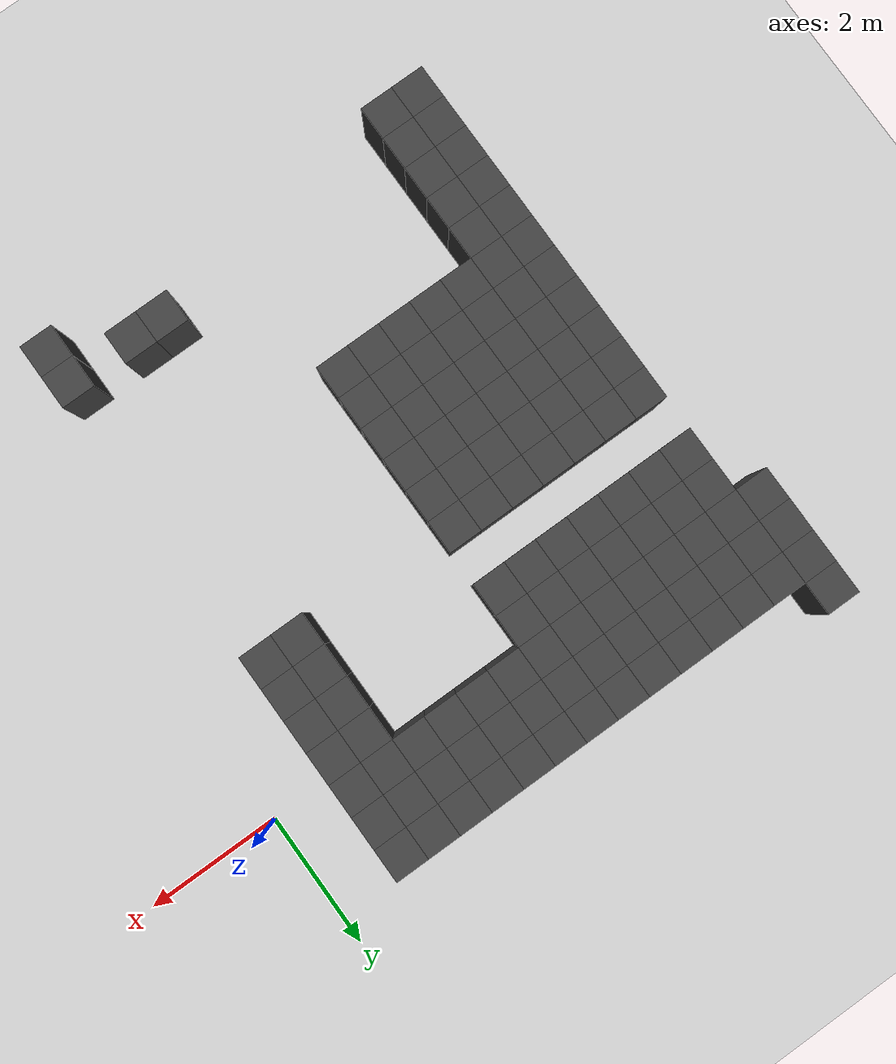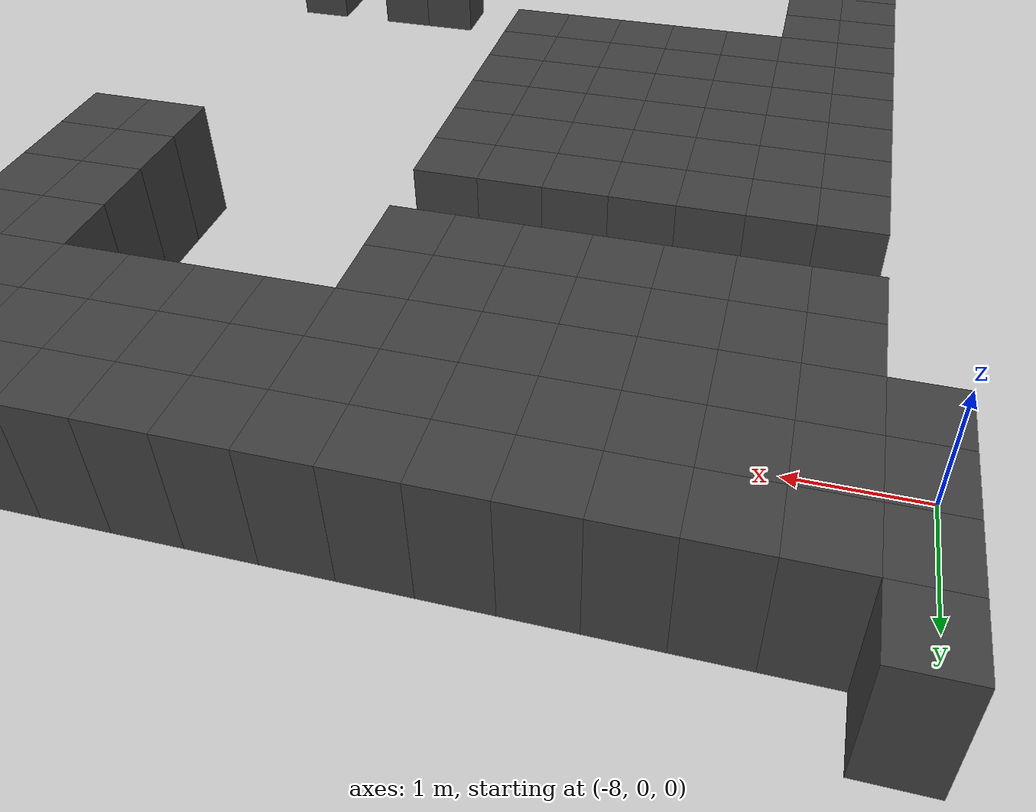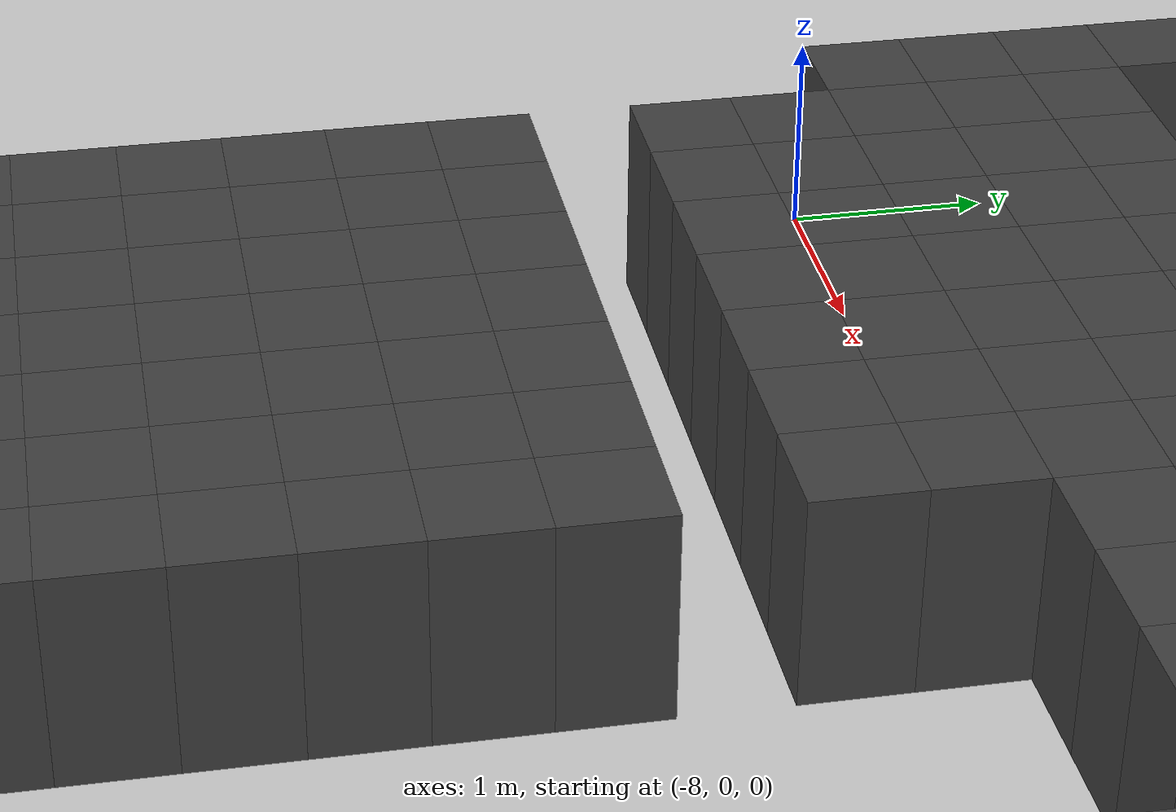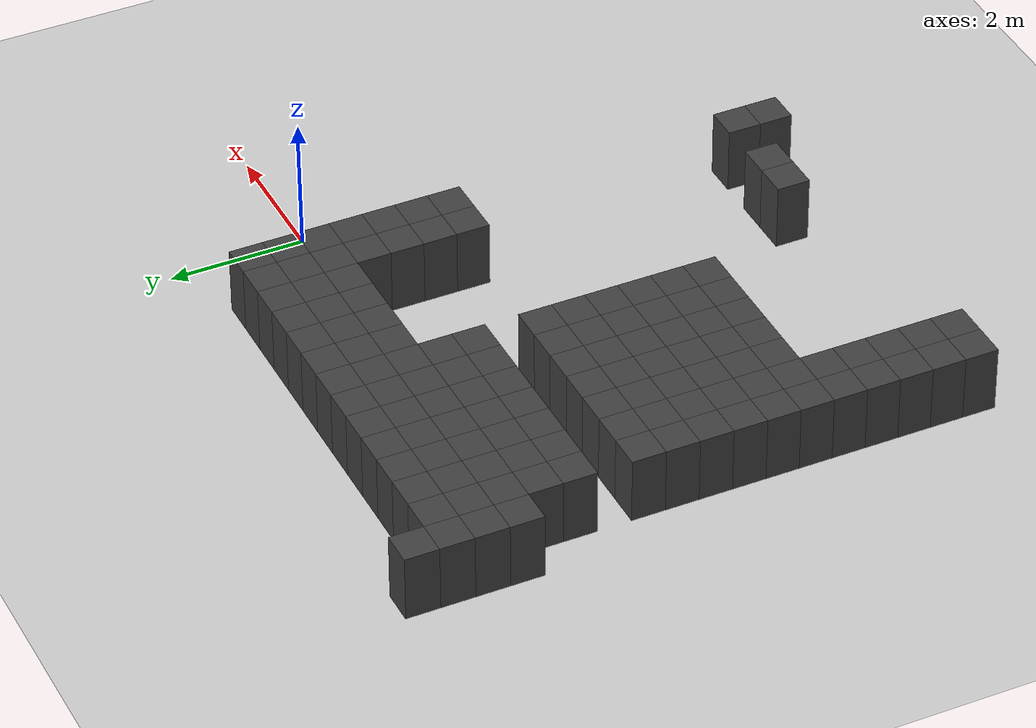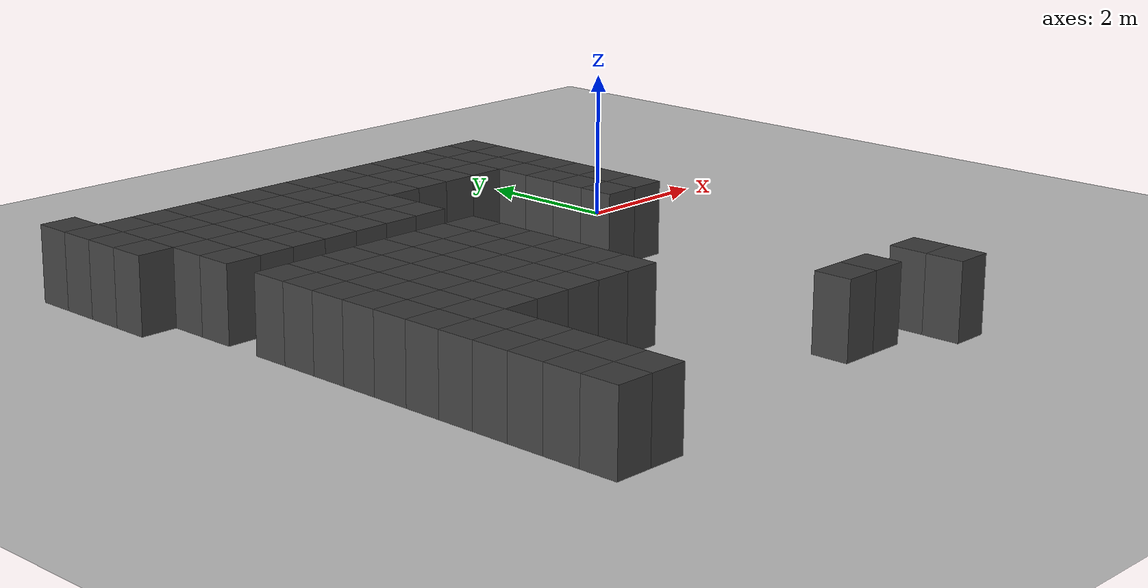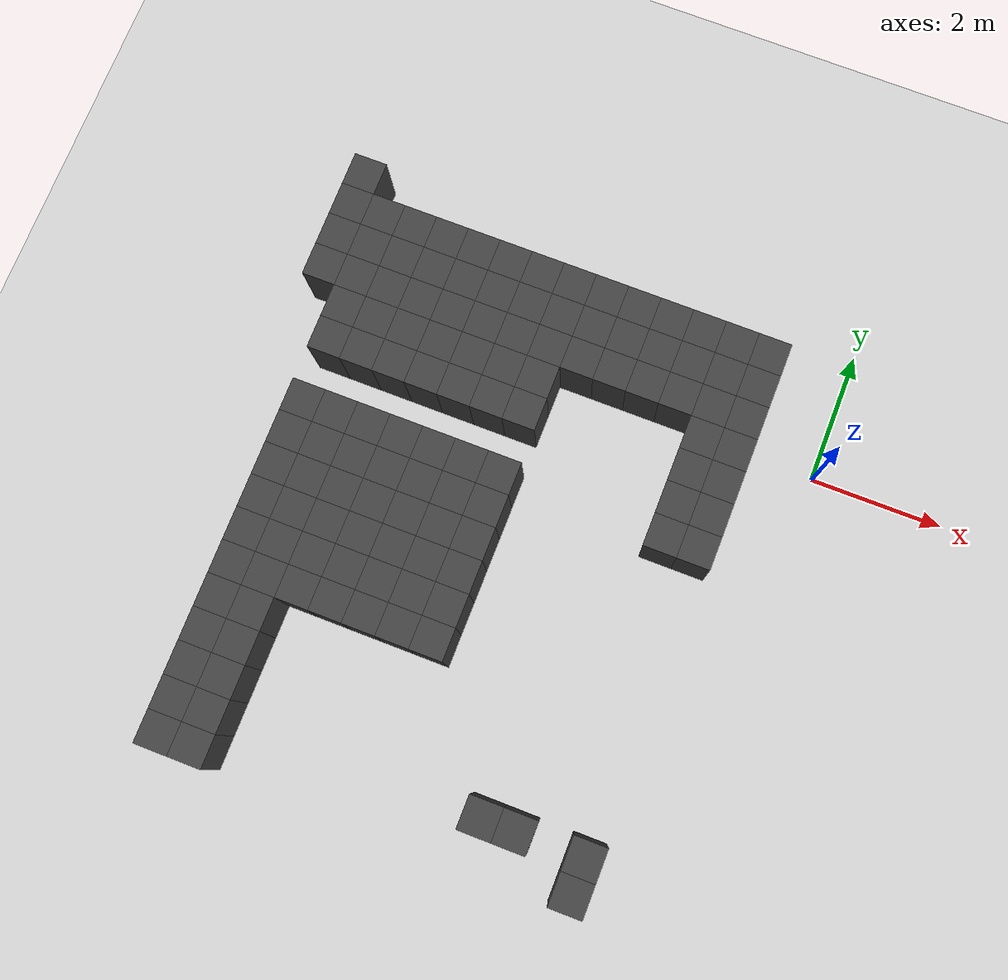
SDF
<sdf version="1.7">
 <world name="map_12885">
  <model name="ground_plane">
   <static>true</static>
   <link name="link">
    <collision name="collision">
     <geometry><plane><normal>0 0 1</normal><size>200 200</size></plane></geometry>
    </collision>
    <visual name="visual">
     <geometry><plane><normal>0 0 1</normal><size>200 200</size></plane></geometry>
     <material><ambient>0.8 0.8 0.8 1</ambient><diffuse>0.8 0.8 0.8 1</diffuse></material>
    </visual>
   </link>
  </model>
  <model name="maze_environment">
   <static>true</static>
   <link name="wall_892">
    <pose>-7.750 1.750 0.500 0 0 0</pose>
    <collision name="col"><geometry><box><size>0.5 0.5 1.0</size></box></geometry></collision>
    <visual name="vis">
     <geometry><box><size>0.5 0.5 1.0</size></box></geometry>
     <material><ambient>0.15 0.15 0.15 1</ambient><diffuse>0.25 0.25 0.25 1</diffuse></material>
    </visual>
   </link>
   <link name="wall_934">
    <pose>-7.750 1.250 0.500 0 0 0</pose>
    <collision name="col"><geometry><box><size>0.5 0.5 1.0</size></box></geometry></collision>
    <visual name="vis">
     <geometry><box><size>0.5 0.5 1.0</size></box></geometry>
     <material><ambient>0.15 0.15 0.15 1</ambient><diffuse>0.25 0.25 0.25 1</diffuse></material>
    </visual>
   </link>
   <link name="wall_935">
    <pose>-7.250 1.250 0.500 0 0 0</pose>
    <collision name="col"><geometry><box><size>0.5 0.5 1.0</size></box></geometry></collision>
    <visual name="vis">
     <geometry><box><size>0.5 0.5 1.0</size></box></geometry>
     <material><ambient>0.15 0.15 0.15 1</ambient><diffuse>0.25 0.25 0.25 1</diffuse></material>
    </visual>
   </link>
   <link name="wall_936">
    <pose>-6.750 1.250 0.500 0 0 0</pose>
    <collision name="col"><geometry><box><size>0.5 0.5 1.0</size></box></geometry></collision>
    <visual name="vis">
     <geometry><box><size>0.5 0.5 1.0</size></box></geometry>
     <material><ambient>0.15 0.15 0.15 1</ambient><diffuse>0.25 0.25 0.25 1</diffuse></material>
    </visual>
   </link>
   <link name="wall_937">
    <pose>-6.250 1.250 0.500 0 0 0</pose>
    <collision name="col"><geometry><box><size>0.5 0.5 1.0</size></box></geometry></collision>
    <visual name="vis">
     <geometry><box><size>0.5 0.5 1.0</size></box></geometry>
     <material><ambient>0.15 0.15 0.15 1</ambient><diffuse>0.25 0.25 0.25 1</diffuse></material>
    </visual>
   </link>
   <link name="wall_938">
    <pose>-5.750 1.250 0.500 0 0 0</pose>
    <collision name="col"><geometry><box><size>0.5 0.5 1.0</size></box></geometry></collision>
    <visual name="vis">
     <geometry><box><size>0.5 0.5 1.0</size></box></geometry>
     <material><ambient>0.15 0.15 0.15 1</ambient><diffuse>0.25 0.25 0.25 1</diffuse></material>
    </visual>
   </link>
   <link name="wall_939">
    <pose>-5.250 1.250 0.500 0 0 0</pose>
    <collision name="col"><geometry><box><size>0.5 0.5 1.0</size></box></geometry></collision>
    <visual name="vis">
     <geometry><box><size>0.5 0.5 1.0</size></box></geometry>
     <material><ambient>0.15 0.15 0.15 1</ambient><diffuse>0.25 0.25 0.25 1</diffuse></material>
    </visual>
   </link>
   <link name="wall_940">
    <pose>-4.750 1.250 0.500 0 0 0</pose>
    <collision name="col"><geometry><box><size>0.5 0.5 1.0</size></box></geometry></collision>
    <visual name="vis">
     <geometry><box><size>0.5 0.5 1.0</size></box></geometry>
     <material><ambient>0.15 0.15 0.15 1</ambient><diffuse>0.25 0.25 0.25 1</diffuse></material>
    </visual>
   </link>
   <link name="wall_941">
    <pose>-4.250 1.250 0.500 0 0 0</pose>
    <collision name="col"><geometry><box><size>0.5 0.5 1.0</size></box></geometry></collision>
    <visual name="vis">
     <geometry><box><size>0.5 0.5 1.0</size></box></geometry>
     <material><ambient>0.15 0.15 0.15 1</ambient><diffuse>0.25 0.25 0.25 1</diffuse></material>
    </visual>
   </link>
   <link name="wall_942">
    <pose>-3.750 1.250 0.500 0 0 0</pose>
    <collision name="col"><geometry><box><size>0.5 0.5 1.0</size></box></geometry></collision>
    <visual name="vis">
     <geometry><box><size>0.5 0.5 1.0</size></box></geometry>
     <material><ambient>0.15 0.15 0.15 1</ambient><diffuse>0.25 0.25 0.25 1</diffuse></material>
    </visual>
   </link>
   <link name="wall_943">
    <pose>-3.250 1.250 0.500 0 0 0</pose>
    <collision name="col"><geometry><box><size>0.5 0.5 1.0</size></box></geometry></collision>
    <visual name="vis">
     <geometry><box><size>0.5 0.5 1.0</size></box></geometry>
     <material><ambient>0.15 0.15 0.15 1</ambient><diffuse>0.25 0.25 0.25 1</diffuse></material>
    </visual>
   </link>
   <link name="wall_944">
    <pose>-2.750 1.250 0.500 0 0 0</pose>
    <collision name="col"><geometry><box><size>0.5 0.5 1.0</size></box></geometry></collision>
    <visual name="vis">
     <geometry><box><size>0.5 0.5 1.0</size></box></geometry>
     <material><ambient>0.15 0.15 0.15 1</ambient><diffuse>0.25 0.25 0.25 1</diffuse></material>
    </visual>
   </link>
   <link name="wall_945">
    <pose>-2.250 1.250 0.500 0 0 0</pose>
    <collision name="col"><geometry><box><size>0.5 0.5 1.0</size></box></geometry></collision>
    <visual name="vis">
     <geometry><box><size>0.5 0.5 1.0</size></box></geometry>
     <material><ambient>0.15 0.15 0.15 1</ambient><diffuse>0.25 0.25 0.25 1</diffuse></material>
    </visual>
   </link>
   <link name="wall_946">
    <pose>-1.750 1.250 0.500 0 0 0</pose>
    <collision name="col"><geometry><box><size>0.5 0.5 1.0</size></box></geometry></collision>
    <visual name="vis">
     <geometry><box><size>0.5 0.5 1.0</size></box></geometry>
     <material><ambient>0.15 0.15 0.15 1</ambient><diffuse>0.25 0.25 0.25 1</diffuse></material>
    </visual>
   </link>
   <link name="wall_947">
    <pose>-1.250 1.250 0.500 0 0 0</pose>
    <collision name="col"><geometry><box><size>0.5 0.5 1.0</size></box></geometry></collision>
    <visual name="vis">
     <geometry><box><size>0.5 0.5 1.0</size></box></geometry>
     <material><ambient>0.15 0.15 0.15 1</ambient><diffuse>0.25 0.25 0.25 1</diffuse></material>
    </visual>
   </link>
   <link name="wall_973">
    <pose>-7.750 0.750 0.500 0 0 0</pose>
    <collision name="col"><geometry><box><size>0.5 0.5 1.0</size></box></geometry></collision>
    <visual name="vis">
     <geometry><box><size>0.5 0.5 1.0</size></box></geometry>
     <material><ambient>0.15 0.15 0.15 1</ambient><diffuse>0.25 0.25 0.25 1</diffuse></material>
    </visual>
   </link>
   <link name="wall_974">
    <pose>-7.250 0.750 0.500 0 0 0</pose>
    <collision name="col"><geometry><box><size>0.5 0.5 1.0</size></box></geometry></collision>
    <visual name="vis">
     <geometry><box><size>0.5 0.5 1.0</size></box></geometry>
     <material><ambient>0.15 0.15 0.15 1</ambient><diffuse>0.25 0.25 0.25 1</diffuse></material>
    </visual>
   </link>
   <link name="wall_975">
    <pose>-6.750 0.750 0.500 0 0 0</pose>
    <collision name="col"><geometry><box><size>0.5 0.5 1.0</size></box></geometry></collision>
    <visual name="vis">
     <geometry><box><size>0.5 0.5 1.0</size></box></geometry>
     <material><ambient>0.15 0.15 0.15 1</ambient><diffuse>0.25 0.25 0.25 1</diffuse></material>
    </visual>
   </link>
   <link name="wall_976">
    <pose>-6.250 0.750 0.500 0 0 0</pose>
    <collision name="col"><geometry><box><size>0.5 0.5 1.0</size></box></geometry></collision>
    <visual name="vis">
     <geometry><box><size>0.5 0.5 1.0</size></box></geometry>
     <material><ambient>0.15 0.15 0.15 1</ambient><diffuse>0.25 0.25 0.25 1</diffuse></material>
    </visual>
   </link>
   <link name="wall_977">
    <pose>-5.750 0.750 0.500 0 0 0</pose>
    <collision name="col"><geometry><box><size>0.5 0.5 1.0</size></box></geometry></collision>
    <visual name="vis">
     <geometry><box><size>0.5 0.5 1.0</size></box></geometry>
     <material><ambient>0.15 0.15 0.15 1</ambient><diffuse>0.25 0.25 0.25 1</diffuse></material>
    </visual>
   </link>
   <link name="wall_978">
    <pose>-5.250 0.750 0.500 0 0 0</pose>
    <collision name="col"><geometry><box><size>0.5 0.5 1.0</size></box></geometry></collision>
    <visual name="vis">
     <geometry><box><size>0.5 0.5 1.0</size></box></geometry>
     <material><ambient>0.15 0.15 0.15 1</ambient><diffuse>0.25 0.25 0.25 1</diffuse></material>
    </visual>
   </link>
   <link name="wall_979">
    <pose>-4.750 0.750 0.500 0 0 0</pose>
    <collision name="col"><geometry><box><size>0.5 0.5 1.0</size></box></geometry></collision>
    <visual name="vis">
     <geometry><box><size>0.5 0.5 1.0</size></box></geometry>
     <material><ambient>0.15 0.15 0.15 1</ambient><diffuse>0.25 0.25 0.25 1</diffuse></material>
    </visual>
   </link>
   <link name="wall_980">
    <pose>-4.250 0.750 0.500 0 0 0</pose>
    <collision name="col"><geometry><box><size>0.5 0.5 1.0</size></box></geometry></collision>
    <visual name="vis">
     <geometry><box><size>0.5 0.5 1.0</size></box></geometry>
     <material><ambient>0.15 0.15 0.15 1</ambient><diffuse>0.25 0.25 0.25 1</diffuse></material>
    </visual>
   </link>
   <link name="wall_981">
    <pose>-3.750 0.750 0.500 0 0 0</pose>
    <collision name="col"><geometry><box><size>0.5 0.5 1.0</size></box></geometry></collision>
    <visual name="vis">
     <geometry><box><size>0.5 0.5 1.0</size></box></geometry>
     <material><ambient>0.15 0.15 0.15 1</ambient><diffuse>0.25 0.25 0.25 1</diffuse></material>
    </visual>
   </link>
   <link name="wall_982">
    <pose>-3.250 0.750 0.500 0 0 0</pose>
    <collision name="col"><geometry><box><size>0.5 0.5 1.0</size></box></geometry></collision>
    <visual name="vis">
     <geometry><box><size>0.5 0.5 1.0</size></box></geometry>
     <material><ambient>0.15 0.15 0.15 1</ambient><diffuse>0.25 0.25 0.25 1</diffuse></material>
    </visual>
   </link>
   <link name="wall_983">
    <pose>-2.750 0.750 0.500 0 0 0</pose>
    <collision name="col"><geometry><box><size>0.5 0.5 1.0</size></box></geometry></collision>
    <visual name="vis">
     <geometry><box><size>0.5 0.5 1.0</size></box></geometry>
     <material><ambient>0.15 0.15 0.15 1</ambient><diffuse>0.25 0.25 0.25 1</diffuse></material>
    </visual>
   </link>
   <link name="wall_984">
    <pose>-2.250 0.750 0.500 0 0 0</pose>
    <collision name="col"><geometry><box><size>0.5 0.5 1.0</size></box></geometry></collision>
    <visual name="vis">
     <geometry><box><size>0.5 0.5 1.0</size></box></geometry>
     <material><ambient>0.15 0.15 0.15 1</ambient><diffuse>0.25 0.25 0.25 1</diffuse></material>
    </visual>
   </link>
   <link name="wall_985">
    <pose>-1.750 0.750 0.500 0 0 0</pose>
    <collision name="col"><geometry><box><size>0.5 0.5 1.0</size></box></geometry></collision>
    <visual name="vis">
     <geometry><box><size>0.5 0.5 1.0</size></box></geometry>
     <material><ambient>0.15 0.15 0.15 1</ambient><diffuse>0.25 0.25 0.25 1</diffuse></material>
    </visual>
   </link>
   <link name="wall_986">
    <pose>-1.250 0.750 0.500 0 0 0</pose>
    <collision name="col"><geometry><box><size>0.5 0.5 1.0</size></box></geometry></collision>
    <visual name="vis">
     <geometry><box><size>0.5 0.5 1.0</size></box></geometry>
     <material><ambient>0.15 0.15 0.15 1</ambient><diffuse>0.25 0.25 0.25 1</diffuse></material>
    </visual>
   </link>
   <link name="wall_1012">
    <pose>-7.750 0.250 0.500 0 0 0</pose>
    <collision name="col"><geometry><box><size>0.5 0.5 1.0</size></box></geometry></collision>
    <visual name="vis">
     <geometry><box><size>0.5 0.5 1.0</size></box></geometry>
     <material><ambient>0.15 0.15 0.15 1</ambient><diffuse>0.25 0.25 0.25 1</diffuse></material>
    </visual>
   </link>
   <link name="wall_1013">
    <pose>-7.250 0.250 0.500 0 0 0</pose>
    <collision name="col"><geometry><box><size>0.5 0.5 1.0</size></box></geometry></collision>
    <visual name="vis">
     <geometry><box><size>0.5 0.5 1.0</size></box></geometry>
     <material><ambient>0.15 0.15 0.15 1</ambient><diffuse>0.25 0.25 0.25 1</diffuse></material>
    </visual>
   </link>
   <link name="wall_1014">
    <pose>-6.750 0.250 0.500 0 0 0</pose>
    <collision name="col"><geometry><box><size>0.5 0.5 1.0</size></box></geometry></collision>
    <visual name="vis">
     <geometry><box><size>0.5 0.5 1.0</size></box></geometry>
     <material><ambient>0.15 0.15 0.15 1</ambient><diffuse>0.25 0.25 0.25 1</diffuse></material>
    </visual>
   </link>
   <link name="wall_1015">
    <pose>-6.250 0.250 0.500 0 0 0</pose>
    <collision name="col"><geometry><box><size>0.5 0.5 1.0</size></box></geometry></collision>
    <visual name="vis">
     <geometry><box><size>0.5 0.5 1.0</size></box></geometry>
     <material><ambient>0.15 0.15 0.15 1</ambient><diffuse>0.25 0.25 0.25 1</diffuse></material>
    </visual>
   </link>
   <link name="wall_1016">
    <pose>-5.750 0.250 0.500 0 0 0</pose>
    <collision name="col"><geometry><box><size>0.5 0.5 1.0</size></box></geometry></collision>
    <visual name="vis">
     <geometry><box><size>0.5 0.5 1.0</size></box></geometry>
     <material><ambient>0.15 0.15 0.15 1</ambient><diffuse>0.25 0.25 0.25 1</diffuse></material>
    </visual>
   </link>
   <link name="wall_1017">
    <pose>-5.250 0.250 0.500 0 0 0</pose>
    <collision name="col"><geometry><box><size>0.5 0.5 1.0</size></box></geometry></collision>
    <visual name="vis">
     <geometry><box><size>0.5 0.5 1.0</size></box></geometry>
     <material><ambient>0.15 0.15 0.15 1</ambient><diffuse>0.25 0.25 0.25 1</diffuse></material>
    </visual>
   </link>
   <link name="wall_1018">
    <pose>-4.750 0.250 0.500 0 0 0</pose>
    <collision name="col"><geometry><box><size>0.5 0.5 1.0</size></box></geometry></collision>
    <visual name="vis">
     <geometry><box><size>0.5 0.5 1.0</size></box></geometry>
     <material><ambient>0.15 0.15 0.15 1</ambient><diffuse>0.25 0.25 0.25 1</diffuse></material>
    </visual>
   </link>
   <link name="wall_1019">
    <pose>-4.250 0.250 0.500 0 0 0</pose>
    <collision name="col"><geometry><box><size>0.5 0.5 1.0</size></box></geometry></collision>
    <visual name="vis">
     <geometry><box><size>0.5 0.5 1.0</size></box></geometry>
     <material><ambient>0.15 0.15 0.15 1</ambient><diffuse>0.25 0.25 0.25 1</diffuse></material>
    </visual>
   </link>
   <link name="wall_1020">
    <pose>-3.750 0.250 0.500 0 0 0</pose>
    <collision name="col"><geometry><box><size>0.5 0.5 1.0</size></box></geometry></collision>
    <visual name="vis">
     <geometry><box><size>0.5 0.5 1.0</size></box></geometry>
     <material><ambient>0.15 0.15 0.15 1</ambient><diffuse>0.25 0.25 0.25 1</diffuse></material>
    </visual>
   </link>
   <link name="wall_1021">
    <pose>-3.250 0.250 0.500 0 0 0</pose>
    <collision name="col"><geometry><box><size>0.5 0.5 1.0</size></box></geometry></collision>
    <visual name="vis">
     <geometry><box><size>0.5 0.5 1.0</size></box></geometry>
     <material><ambient>0.15 0.15 0.15 1</ambient><diffuse>0.25 0.25 0.25 1</diffuse></material>
    </visual>
   </link>
   <link name="wall_1022">
    <pose>-2.750 0.250 0.500 0 0 0</pose>
    <collision name="col"><geometry><box><size>0.5 0.5 1.0</size></box></geometry></collision>
    <visual name="vis">
     <geometry><box><size>0.5 0.5 1.0</size></box></geometry>
     <material><ambient>0.15 0.15 0.15 1</ambient><diffuse>0.25 0.25 0.25 1</diffuse></material>
    </visual>
   </link>
   <link name="wall_1023">
    <pose>-2.250 0.250 0.500 0 0 0</pose>
    <collision name="col"><geometry><box><size>0.5 0.5 1.0</size></box></geometry></collision>
    <visual name="vis">
     <geometry><box><size>0.5 0.5 1.0</size></box></geometry>
     <material><ambient>0.15 0.15 0.15 1</ambient><diffuse>0.25 0.25 0.25 1</diffuse></material>
    </visual>
   </link>
   <link name="wall_1024">
    <pose>-1.750 0.250 0.500 0 0 0</pose>
    <collision name="col"><geometry><box><size>0.5 0.5 1.0</size></box></geometry></collision>
    <visual name="vis">
     <geometry><box><size>0.5 0.5 1.0</size></box></geometry>
     <material><ambient>0.15 0.15 0.15 1</ambient><diffuse>0.25 0.25 0.25 1</diffuse></material>
    </visual>
   </link>
   <link name="wall_1025">
    <pose>-1.250 0.250 0.500 0 0 0</pose>
    <collision name="col"><geometry><box><size>0.5 0.5 1.0</size></box></geometry></collision>
    <visual name="vis">
     <geometry><box><size>0.5 0.5 1.0</size></box></geometry>
     <material><ambient>0.15 0.15 0.15 1</ambient><diffuse>0.25 0.25 0.25 1</diffuse></material>
    </visual>
   </link>
   <link name="wall_1050">
    <pose>-7.250 -0.250 0.500 0 0 0</pose>
    <collision name="col"><geometry><box><size>0.5 0.5 1.0</size></box></geometry></collision>
    <visual name="vis">
     <geometry><box><size>0.5 0.5 1.0</size></box></geometry>
     <material><ambient>0.15 0.15 0.15 1</ambient><diffuse>0.25 0.25 0.25 1</diffuse></material>
    </visual>
   </link>
   <link name="wall_1051">
    <pose>-6.750 -0.250 0.500 0 0 0</pose>
    <collision name="col"><geometry><box><size>0.5 0.5 1.0</size></box></geometry></collision>
    <visual name="vis">
     <geometry><box><size>0.5 0.5 1.0</size></box></geometry>
     <material><ambient>0.15 0.15 0.15 1</ambient><diffuse>0.25 0.25 0.25 1</diffuse></material>
    </visual>
   </link>
   <link name="wall_1052">
    <pose>-6.250 -0.250 0.500 0 0 0</pose>
    <collision name="col"><geometry><box><size>0.5 0.5 1.0</size></box></geometry></collision>
    <visual name="vis">
     <geometry><box><size>0.5 0.5 1.0</size></box></geometry>
     <material><ambient>0.15 0.15 0.15 1</ambient><diffuse>0.25 0.25 0.25 1</diffuse></material>
    </visual>
   </link>
   <link name="wall_1053">
    <pose>-5.750 -0.250 0.500 0 0 0</pose>
    <collision name="col"><geometry><box><size>0.5 0.5 1.0</size></box></geometry></collision>
    <visual name="vis">
     <geometry><box><size>0.5 0.5 1.0</size></box></geometry>
     <material><ambient>0.15 0.15 0.15 1</ambient><diffuse>0.25 0.25 0.25 1</diffuse></material>
    </visual>
   </link>
   <link name="wall_1054">
    <pose>-5.250 -0.250 0.500 0 0 0</pose>
    <collision name="col"><geometry><box><size>0.5 0.5 1.0</size></box></geometry></collision>
    <visual name="vis">
     <geometry><box><size>0.5 0.5 1.0</size></box></geometry>
     <material><ambient>0.15 0.15 0.15 1</ambient><diffuse>0.25 0.25 0.25 1</diffuse></material>
    </visual>
   </link>
   <link name="wall_1055">
    <pose>-4.750 -0.250 0.500 0 0 0</pose>
    <collision name="col"><geometry><box><size>0.5 0.5 1.0</size></box></geometry></collision>
    <visual name="vis">
     <geometry><box><size>0.5 0.5 1.0</size></box></geometry>
     <material><ambient>0.15 0.15 0.15 1</ambient><diffuse>0.25 0.25 0.25 1</diffuse></material>
    </visual>
   </link>
   <link name="wall_1056">
    <pose>-4.250 -0.250 0.500 0 0 0</pose>
    <collision name="col"><geometry><box><size>0.5 0.5 1.0</size></box></geometry></collision>
    <visual name="vis">
     <geometry><box><size>0.5 0.5 1.0</size></box></geometry>
     <material><ambient>0.15 0.15 0.15 1</ambient><diffuse>0.25 0.25 0.25 1</diffuse></material>
    </visual>
   </link>
   <link name="wall_1057">
    <pose>-1.750 -0.250 0.500 0 0 0</pose>
    <collision name="col"><geometry><box><size>0.5 0.5 1.0</size></box></geometry></collision>
    <visual name="vis">
     <geometry><box><size>0.5 0.5 1.0</size></box></geometry>
     <material><ambient>0.15 0.15 0.15 1</ambient><diffuse>0.25 0.25 0.25 1</diffuse></material>
    </visual>
   </link>
   <link name="wall_1058">
    <pose>-1.250 -0.250 0.500 0 0 0</pose>
    <collision name="col"><geometry><box><size>0.5 0.5 1.0</size></box></geometry></collision>
    <visual name="vis">
     <geometry><box><size>0.5 0.5 1.0</size></box></geometry>
     <material><ambient>0.15 0.15 0.15 1</ambient><diffuse>0.25 0.25 0.25 1</diffuse></material>
    </visual>
   </link>
   <link name="wall_1084">
    <pose>-7.250 -0.750 0.500 0 0 0</pose>
    <collision name="col"><geometry><box><size>0.5 0.5 1.0</size></box></geometry></collision>
    <visual name="vis">
     <geometry><box><size>0.5 0.5 1.0</size></box></geometry>
     <material><ambient>0.15 0.15 0.15 1</ambient><diffuse>0.25 0.25 0.25 1</diffuse></material>
    </visual>
   </link>
   <link name="wall_1085">
    <pose>-6.750 -0.750 0.500 0 0 0</pose>
    <collision name="col"><geometry><box><size>0.5 0.5 1.0</size></box></geometry></collision>
    <visual name="vis">
     <geometry><box><size>0.5 0.5 1.0</size></box></geometry>
     <material><ambient>0.15 0.15 0.15 1</ambient><diffuse>0.25 0.25 0.25 1</diffuse></material>
    </visual>
   </link>
   <link name="wall_1086">
    <pose>-6.250 -0.750 0.500 0 0 0</pose>
    <collision name="col"><geometry><box><size>0.5 0.5 1.0</size></box></geometry></collision>
    <visual name="vis">
     <geometry><box><size>0.5 0.5 1.0</size></box></geometry>
     <material><ambient>0.15 0.15 0.15 1</ambient><diffuse>0.25 0.25 0.25 1</diffuse></material>
    </visual>
   </link>
   <link name="wall_1087">
    <pose>-5.750 -0.750 0.500 0 0 0</pose>
    <collision name="col"><geometry><box><size>0.5 0.5 1.0</size></box></geometry></collision>
    <visual name="vis">
     <geometry><box><size>0.5 0.5 1.0</size></box></geometry>
     <material><ambient>0.15 0.15 0.15 1</ambient><diffuse>0.25 0.25 0.25 1</diffuse></material>
    </visual>
   </link>
   <link name="wall_1088">
    <pose>-5.250 -0.750 0.500 0 0 0</pose>
    <collision name="col"><geometry><box><size>0.5 0.5 1.0</size></box></geometry></collision>
    <visual name="vis">
     <geometry><box><size>0.5 0.5 1.0</size></box></geometry>
     <material><ambient>0.15 0.15 0.15 1</ambient><diffuse>0.25 0.25 0.25 1</diffuse></material>
    </visual>
   </link>
   <link name="wall_1089">
    <pose>-4.750 -0.750 0.500 0 0 0</pose>
    <collision name="col"><geometry><box><size>0.5 0.5 1.0</size></box></geometry></collision>
    <visual name="vis">
     <geometry><box><size>0.5 0.5 1.0</size></box></geometry>
     <material><ambient>0.15 0.15 0.15 1</ambient><diffuse>0.25 0.25 0.25 1</diffuse></material>
    </visual>
   </link>
   <link name="wall_1090">
    <pose>-4.250 -0.750 0.500 0 0 0</pose>
    <collision name="col"><geometry><box><size>0.5 0.5 1.0</size></box></geometry></collision>
    <visual name="vis">
     <geometry><box><size>0.5 0.5 1.0</size></box></geometry>
     <material><ambient>0.15 0.15 0.15 1</ambient><diffuse>0.25 0.25 0.25 1</diffuse></material>
    </visual>
   </link>
   <link name="wall_1091">
    <pose>-1.750 -0.750 0.500 0 0 0</pose>
    <collision name="col"><geometry><box><size>0.5 0.5 1.0</size></box></geometry></collision>
    <visual name="vis">
     <geometry><box><size>0.5 0.5 1.0</size></box></geometry>
     <material><ambient>0.15 0.15 0.15 1</ambient><diffuse>0.25 0.25 0.25 1</diffuse></material>
    </visual>
   </link>
   <link name="wall_1092">
    <pose>-1.250 -0.750 0.500 0 0 0</pose>
    <collision name="col"><geometry><box><size>0.5 0.5 1.0</size></box></geometry></collision>
    <visual name="vis">
     <geometry><box><size>0.5 0.5 1.0</size></box></geometry>
     <material><ambient>0.15 0.15 0.15 1</ambient><diffuse>0.25 0.25 0.25 1</diffuse></material>
    </visual>
   </link>
   <link name="wall_1120">
    <pose>-1.750 -1.250 0.500 0 0 0</pose>
    <collision name="col"><geometry><box><size>0.5 0.5 1.0</size></box></geometry></collision>
    <visual name="vis">
     <geometry><box><size>0.5 0.5 1.0</size></box></geometry>
     <material><ambient>0.15 0.15 0.15 1</ambient><diffuse>0.25 0.25 0.25 1</diffuse></material>
    </visual>
   </link>
   <link name="wall_1121">
    <pose>-1.250 -1.250 0.500 0 0 0</pose>
    <collision name="col"><geometry><box><size>0.5 0.5 1.0</size></box></geometry></collision>
    <visual name="vis">
     <geometry><box><size>0.5 0.5 1.0</size></box></geometry>
     <material><ambient>0.15 0.15 0.15 1</ambient><diffuse>0.25 0.25 0.25 1</diffuse></material>
    </visual>
   </link>
   <link name="wall_1158">
    <pose>-7.250 -1.750 0.500 0 0 0</pose>
    <collision name="col"><geometry><box><size>0.5 0.5 1.0</size></box></geometry></collision>
    <visual name="vis">
     <geometry><box><size>0.5 0.5 1.0</size></box></geometry>
     <material><ambient>0.15 0.15 0.15 1</ambient><diffuse>0.25 0.25 0.25 1</diffuse></material>
    </visual>
   </link>
   <link name="wall_1159">
    <pose>-6.750 -1.750 0.500 0 0 0</pose>
    <collision name="col"><geometry><box><size>0.5 0.5 1.0</size></box></geometry></collision>
    <visual name="vis">
     <geometry><box><size>0.5 0.5 1.0</size></box></geometry>
     <material><ambient>0.15 0.15 0.15 1</ambient><diffuse>0.25 0.25 0.25 1</diffuse></material>
    </visual>
   </link>
   <link name="wall_1160">
    <pose>-6.250 -1.750 0.500 0 0 0</pose>
    <collision name="col"><geometry><box><size>0.5 0.5 1.0</size></box></geometry></collision>
    <visual name="vis">
     <geometry><box><size>0.5 0.5 1.0</size></box></geometry>
     <material><ambient>0.15 0.15 0.15 1</ambient><diffuse>0.25 0.25 0.25 1</diffuse></material>
    </visual>
   </link>
   <link name="wall_1161">
    <pose>-5.750 -1.750 0.500 0 0 0</pose>
    <collision name="col"><geometry><box><size>0.5 0.5 1.0</size></box></geometry></collision>
    <visual name="vis">
     <geometry><box><size>0.5 0.5 1.0</size></box></geometry>
     <material><ambient>0.15 0.15 0.15 1</ambient><diffuse>0.25 0.25 0.25 1</diffuse></material>
    </visual>
   </link>
   <link name="wall_1162">
    <pose>-5.250 -1.750 0.500 0 0 0</pose>
    <collision name="col"><geometry><box><size>0.5 0.5 1.0</size></box></geometry></collision>
    <visual name="vis">
     <geometry><box><size>0.5 0.5 1.0</size></box></geometry>
     <material><ambient>0.15 0.15 0.15 1</ambient><diffuse>0.25 0.25 0.25 1</diffuse></material>
    </visual>
   </link>
   <link name="wall_1163">
    <pose>-4.750 -1.750 0.500 0 0 0</pose>
    <collision name="col"><geometry><box><size>0.5 0.5 1.0</size></box></geometry></collision>
    <visual name="vis">
     <geometry><box><size>0.5 0.5 1.0</size></box></geometry>
     <material><ambient>0.15 0.15 0.15 1</ambient><diffuse>0.25 0.25 0.25 1</diffuse></material>
    </visual>
   </link>
   <link name="wall_1164">
    <pose>-4.250 -1.750 0.500 0 0 0</pose>
    <collision name="col"><geometry><box><size>0.5 0.5 1.0</size></box></geometry></collision>
    <visual name="vis">
     <geometry><box><size>0.5 0.5 1.0</size></box></geometry>
     <material><ambient>0.15 0.15 0.15 1</ambient><diffuse>0.25 0.25 0.25 1</diffuse></material>
    </visual>
   </link>
   <link name="wall_1165">
    <pose>-1.750 -1.750 0.500 0 0 0</pose>
    <collision name="col"><geometry><box><size>0.5 0.5 1.0</size></box></geometry></collision>
    <visual name="vis">
     <geometry><box><size>0.5 0.5 1.0</size></box></geometry>
     <material><ambient>0.15 0.15 0.15 1</ambient><diffuse>0.25 0.25 0.25 1</diffuse></material>
    </visual>
   </link>
   <link name="wall_1166">
    <pose>-1.250 -1.750 0.500 0 0 0</pose>
    <collision name="col"><geometry><box><size>0.5 0.5 1.0</size></box></geometry></collision>
    <visual name="vis">
     <geometry><box><size>0.5 0.5 1.0</size></box></geometry>
     <material><ambient>0.15 0.15 0.15 1</ambient><diffuse>0.25 0.25 0.25 1</diffuse></material>
    </visual>
   </link>
   <link name="wall_1203">
    <pose>-7.250 -2.250 0.500 0 0 0</pose>
    <collision name="col"><geometry><box><size>0.5 0.5 1.0</size></box></geometry></collision>
    <visual name="vis">
     <geometry><box><size>0.5 0.5 1.0</size></box></geometry>
     <material><ambient>0.15 0.15 0.15 1</ambient><diffuse>0.25 0.25 0.25 1</diffuse></material>
    </visual>
   </link>
   <link name="wall_1204">
    <pose>-6.750 -2.250 0.500 0 0 0</pose>
    <collision name="col"><geometry><box><size>0.5 0.5 1.0</size></box></geometry></collision>
    <visual name="vis">
     <geometry><box><size>0.5 0.5 1.0</size></box></geometry>
     <material><ambient>0.15 0.15 0.15 1</ambient><diffuse>0.25 0.25 0.25 1</diffuse></material>
    </visual>
   </link>
   <link name="wall_1205">
    <pose>-6.250 -2.250 0.500 0 0 0</pose>
    <collision name="col"><geometry><box><size>0.5 0.5 1.0</size></box></geometry></collision>
    <visual name="vis">
     <geometry><box><size>0.5 0.5 1.0</size></box></geometry>
     <material><ambient>0.15 0.15 0.15 1</ambient><diffuse>0.25 0.25 0.25 1</diffuse></material>
    </visual>
   </link>
   <link name="wall_1206">
    <pose>-5.750 -2.250 0.500 0 0 0</pose>
    <collision name="col"><geometry><box><size>0.5 0.5 1.0</size></box></geometry></collision>
    <visual name="vis">
     <geometry><box><size>0.5 0.5 1.0</size></box></geometry>
     <material><ambient>0.15 0.15 0.15 1</ambient><diffuse>0.25 0.25 0.25 1</diffuse></material>
    </visual>
   </link>
   <link name="wall_1207">
    <pose>-5.250 -2.250 0.500 0 0 0</pose>
    <collision name="col"><geometry><box><size>0.5 0.5 1.0</size></box></geometry></collision>
    <visual name="vis">
     <geometry><box><size>0.5 0.5 1.0</size></box></geometry>
     <material><ambient>0.15 0.15 0.15 1</ambient><diffuse>0.25 0.25 0.25 1</diffuse></material>
    </visual>
   </link>
   <link name="wall_1208">
    <pose>-4.750 -2.250 0.500 0 0 0</pose>
    <collision name="col"><geometry><box><size>0.5 0.5 1.0</size></box></geometry></collision>
    <visual name="vis">
     <geometry><box><size>0.5 0.5 1.0</size></box></geometry>
     <material><ambient>0.15 0.15 0.15 1</ambient><diffuse>0.25 0.25 0.25 1</diffuse></material>
    </visual>
   </link>
   <link name="wall_1209">
    <pose>-4.250 -2.250 0.500 0 0 0</pose>
    <collision name="col"><geometry><box><size>0.5 0.5 1.0</size></box></geometry></collision>
    <visual name="vis">
     <geometry><box><size>0.5 0.5 1.0</size></box></geometry>
     <material><ambient>0.15 0.15 0.15 1</ambient><diffuse>0.25 0.25 0.25 1</diffuse></material>
    </visual>
   </link>
   <link name="wall_1244">
    <pose>-7.250 -2.750 0.500 0 0 0</pose>
    <collision name="col"><geometry><box><size>0.5 0.5 1.0</size></box></geometry></collision>
    <visual name="vis">
     <geometry><box><size>0.5 0.5 1.0</size></box></geometry>
     <material><ambient>0.15 0.15 0.15 1</ambient><diffuse>0.25 0.25 0.25 1</diffuse></material>
    </visual>
   </link>
   <link name="wall_1245">
    <pose>-6.750 -2.750 0.500 0 0 0</pose>
    <collision name="col"><geometry><box><size>0.5 0.5 1.0</size></box></geometry></collision>
    <visual name="vis">
     <geometry><box><size>0.5 0.5 1.0</size></box></geometry>
     <material><ambient>0.15 0.15 0.15 1</ambient><diffuse>0.25 0.25 0.25 1</diffuse></material>
    </visual>
   </link>
   <link name="wall_1246">
    <pose>-6.250 -2.750 0.500 0 0 0</pose>
    <collision name="col"><geometry><box><size>0.5 0.5 1.0</size></box></geometry></collision>
    <visual name="vis">
     <geometry><box><size>0.5 0.5 1.0</size></box></geometry>
     <material><ambient>0.15 0.15 0.15 1</ambient><diffuse>0.25 0.25 0.25 1</diffuse></material>
    </visual>
   </link>
   <link name="wall_1247">
    <pose>-5.750 -2.750 0.500 0 0 0</pose>
    <collision name="col"><geometry><box><size>0.5 0.5 1.0</size></box></geometry></collision>
    <visual name="vis">
     <geometry><box><size>0.5 0.5 1.0</size></box></geometry>
     <material><ambient>0.15 0.15 0.15 1</ambient><diffuse>0.25 0.25 0.25 1</diffuse></material>
    </visual>
   </link>
   <link name="wall_1248">
    <pose>-5.250 -2.750 0.500 0 0 0</pose>
    <collision name="col"><geometry><box><size>0.5 0.5 1.0</size></box></geometry></collision>
    <visual name="vis">
     <geometry><box><size>0.5 0.5 1.0</size></box></geometry>
     <material><ambient>0.15 0.15 0.15 1</ambient><diffuse>0.25 0.25 0.25 1</diffuse></material>
    </visual>
   </link>
   <link name="wall_1249">
    <pose>-4.750 -2.750 0.500 0 0 0</pose>
    <collision name="col"><geometry><box><size>0.5 0.5 1.0</size></box></geometry></collision>
    <visual name="vis">
     <geometry><box><size>0.5 0.5 1.0</size></box></geometry>
     <material><ambient>0.15 0.15 0.15 1</ambient><diffuse>0.25 0.25 0.25 1</diffuse></material>
    </visual>
   </link>
   <link name="wall_1250">
    <pose>-4.250 -2.750 0.500 0 0 0</pose>
    <collision name="col"><geometry><box><size>0.5 0.5 1.0</size></box></geometry></collision>
    <visual name="vis">
     <geometry><box><size>0.5 0.5 1.0</size></box></geometry>
     <material><ambient>0.15 0.15 0.15 1</ambient><diffuse>0.25 0.25 0.25 1</diffuse></material>
    </visual>
   </link>
   <link name="wall_1285">
    <pose>-7.250 -3.250 0.500 0 0 0</pose>
    <collision name="col"><geometry><box><size>0.5 0.5 1.0</size></box></geometry></collision>
    <visual name="vis">
     <geometry><box><size>0.5 0.5 1.0</size></box></geometry>
     <material><ambient>0.15 0.15 0.15 1</ambient><diffuse>0.25 0.25 0.25 1</diffuse></material>
    </visual>
   </link>
   <link name="wall_1286">
    <pose>-6.750 -3.250 0.500 0 0 0</pose>
    <collision name="col"><geometry><box><size>0.5 0.5 1.0</size></box></geometry></collision>
    <visual name="vis">
     <geometry><box><size>0.5 0.5 1.0</size></box></geometry>
     <material><ambient>0.15 0.15 0.15 1</ambient><diffuse>0.25 0.25 0.25 1</diffuse></material>
    </visual>
   </link>
   <link name="wall_1287">
    <pose>-6.250 -3.250 0.500 0 0 0</pose>
    <collision name="col"><geometry><box><size>0.5 0.5 1.0</size></box></geometry></collision>
    <visual name="vis">
     <geometry><box><size>0.5 0.5 1.0</size></box></geometry>
     <material><ambient>0.15 0.15 0.15 1</ambient><diffuse>0.25 0.25 0.25 1</diffuse></material>
    </visual>
   </link>
   <link name="wall_1288">
    <pose>-5.750 -3.250 0.500 0 0 0</pose>
    <collision name="col"><geometry><box><size>0.5 0.5 1.0</size></box></geometry></collision>
    <visual name="vis">
     <geometry><box><size>0.5 0.5 1.0</size></box></geometry>
     <material><ambient>0.15 0.15 0.15 1</ambient><diffuse>0.25 0.25 0.25 1</diffuse></material>
    </visual>
   </link>
   <link name="wall_1289">
    <pose>-5.250 -3.250 0.500 0 0 0</pose>
    <collision name="col"><geometry><box><size>0.5 0.5 1.0</size></box></geometry></collision>
    <visual name="vis">
     <geometry><box><size>0.5 0.5 1.0</size></box></geometry>
     <material><ambient>0.15 0.15 0.15 1</ambient><diffuse>0.25 0.25 0.25 1</diffuse></material>
    </visual>
   </link>
   <link name="wall_1290">
    <pose>-4.750 -3.250 0.500 0 0 0</pose>
    <collision name="col"><geometry><box><size>0.5 0.5 1.0</size></box></geometry></collision>
    <visual name="vis">
     <geometry><box><size>0.5 0.5 1.0</size></box></geometry>
     <material><ambient>0.15 0.15 0.15 1</ambient><diffuse>0.25 0.25 0.25 1</diffuse></material>
    </visual>
   </link>
   <link name="wall_1291">
    <pose>-4.250 -3.250 0.500 0 0 0</pose>
    <collision name="col"><geometry><box><size>0.5 0.5 1.0</size></box></geometry></collision>
    <visual name="vis">
     <geometry><box><size>0.5 0.5 1.0</size></box></geometry>
     <material><ambient>0.15 0.15 0.15 1</ambient><diffuse>0.25 0.25 0.25 1</diffuse></material>
    </visual>
   </link>
   <link name="wall_1326">
    <pose>-7.250 -3.750 0.500 0 0 0</pose>
    <collision name="col"><geometry><box><size>0.5 0.5 1.0</size></box></geometry></collision>
    <visual name="vis">
     <geometry><box><size>0.5 0.5 1.0</size></box></geometry>
     <material><ambient>0.15 0.15 0.15 1</ambient><diffuse>0.25 0.25 0.25 1</diffuse></material>
    </visual>
   </link>
   <link name="wall_1327">
    <pose>-6.750 -3.750 0.500 0 0 0</pose>
    <collision name="col"><geometry><box><size>0.5 0.5 1.0</size></box></geometry></collision>
    <visual name="vis">
     <geometry><box><size>0.5 0.5 1.0</size></box></geometry>
     <material><ambient>0.15 0.15 0.15 1</ambient><diffuse>0.25 0.25 0.25 1</diffuse></material>
    </visual>
   </link>
   <link name="wall_1328">
    <pose>-6.250 -3.750 0.500 0 0 0</pose>
    <collision name="col"><geometry><box><size>0.5 0.5 1.0</size></box></geometry></collision>
    <visual name="vis">
     <geometry><box><size>0.5 0.5 1.0</size></box></geometry>
     <material><ambient>0.15 0.15 0.15 1</ambient><diffuse>0.25 0.25 0.25 1</diffuse></material>
    </visual>
   </link>
   <link name="wall_1329">
    <pose>-5.750 -3.750 0.500 0 0 0</pose>
    <collision name="col"><geometry><box><size>0.5 0.5 1.0</size></box></geometry></collision>
    <visual name="vis">
     <geometry><box><size>0.5 0.5 1.0</size></box></geometry>
     <material><ambient>0.15 0.15 0.15 1</ambient><diffuse>0.25 0.25 0.25 1</diffuse></material>
    </visual>
   </link>
   <link name="wall_1330">
    <pose>-5.250 -3.750 0.500 0 0 0</pose>
    <collision name="col"><geometry><box><size>0.5 0.5 1.0</size></box></geometry></collision>
    <visual name="vis">
     <geometry><box><size>0.5 0.5 1.0</size></box></geometry>
     <material><ambient>0.15 0.15 0.15 1</ambient><diffuse>0.25 0.25 0.25 1</diffuse></material>
    </visual>
   </link>
   <link name="wall_1331">
    <pose>-4.750 -3.750 0.500 0 0 0</pose>
    <collision name="col"><geometry><box><size>0.5 0.5 1.0</size></box></geometry></collision>
    <visual name="vis">
     <geometry><box><size>0.5 0.5 1.0</size></box></geometry>
     <material><ambient>0.15 0.15 0.15 1</ambient><diffuse>0.25 0.25 0.25 1</diffuse></material>
    </visual>
   </link>
   <link name="wall_1332">
    <pose>-4.250 -3.750 0.500 0 0 0</pose>
    <collision name="col"><geometry><box><size>0.5 0.5 1.0</size></box></geometry></collision>
    <visual name="vis">
     <geometry><box><size>0.5 0.5 1.0</size></box></geometry>
     <material><ambient>0.15 0.15 0.15 1</ambient><diffuse>0.25 0.25 0.25 1</diffuse></material>
    </visual>
   </link>
   <link name="wall_1367">
    <pose>-7.250 -4.250 0.500 0 0 0</pose>
    <collision name="col"><geometry><box><size>0.5 0.5 1.0</size></box></geometry></collision>
    <visual name="vis">
     <geometry><box><size>0.5 0.5 1.0</size></box></geometry>
     <material><ambient>0.15 0.15 0.15 1</ambient><diffuse>0.25 0.25 0.25 1</diffuse></material>
    </visual>
   </link>
   <link name="wall_1368">
    <pose>-6.750 -4.250 0.500 0 0 0</pose>
    <collision name="col"><geometry><box><size>0.5 0.5 1.0</size></box></geometry></collision>
    <visual name="vis">
     <geometry><box><size>0.5 0.5 1.0</size></box></geometry>
     <material><ambient>0.15 0.15 0.15 1</ambient><diffuse>0.25 0.25 0.25 1</diffuse></material>
    </visual>
   </link>
   <link name="wall_1369">
    <pose>-6.250 -4.250 0.500 0 0 0</pose>
    <collision name="col"><geometry><box><size>0.5 0.5 1.0</size></box></geometry></collision>
    <visual name="vis">
     <geometry><box><size>0.5 0.5 1.0</size></box></geometry>
     <material><ambient>0.15 0.15 0.15 1</ambient><diffuse>0.25 0.25 0.25 1</diffuse></material>
    </visual>
   </link>
   <link name="wall_1370">
    <pose>-5.750 -4.250 0.500 0 0 0</pose>
    <collision name="col"><geometry><box><size>0.5 0.5 1.0</size></box></geometry></collision>
    <visual name="vis">
     <geometry><box><size>0.5 0.5 1.0</size></box></geometry>
     <material><ambient>0.15 0.15 0.15 1</ambient><diffuse>0.25 0.25 0.25 1</diffuse></material>
    </visual>
   </link>
   <link name="wall_1371">
    <pose>-5.250 -4.250 0.500 0 0 0</pose>
    <collision name="col"><geometry><box><size>0.5 0.5 1.0</size></box></geometry></collision>
    <visual name="vis">
     <geometry><box><size>0.5 0.5 1.0</size></box></geometry>
     <material><ambient>0.15 0.15 0.15 1</ambient><diffuse>0.25 0.25 0.25 1</diffuse></material>
    </visual>
   </link>
   <link name="wall_1372">
    <pose>-4.750 -4.250 0.500 0 0 0</pose>
    <collision name="col"><geometry><box><size>0.5 0.5 1.0</size></box></geometry></collision>
    <visual name="vis">
     <geometry><box><size>0.5 0.5 1.0</size></box></geometry>
     <material><ambient>0.15 0.15 0.15 1</ambient><diffuse>0.25 0.25 0.25 1</diffuse></material>
    </visual>
   </link>
   <link name="wall_1373">
    <pose>-4.250 -4.250 0.500 0 0 0</pose>
    <collision name="col"><geometry><box><size>0.5 0.5 1.0</size></box></geometry></collision>
    <visual name="vis">
     <geometry><box><size>0.5 0.5 1.0</size></box></geometry>
     <material><ambient>0.15 0.15 0.15 1</ambient><diffuse>0.25 0.25 0.25 1</diffuse></material>
    </visual>
   </link>
   <link name="wall_1408">
    <pose>-7.250 -4.750 0.500 0 0 0</pose>
    <collision name="col"><geometry><box><size>0.5 0.5 1.0</size></box></geometry></collision>
    <visual name="vis">
     <geometry><box><size>0.5 0.5 1.0</size></box></geometry>
     <material><ambient>0.15 0.15 0.15 1</ambient><diffuse>0.25 0.25 0.25 1</diffuse></material>
    </visual>
   </link>
   <link name="wall_1409">
    <pose>-6.750 -4.750 0.500 0 0 0</pose>
    <collision name="col"><geometry><box><size>0.5 0.5 1.0</size></box></geometry></collision>
    <visual name="vis">
     <geometry><box><size>0.5 0.5 1.0</size></box></geometry>
     <material><ambient>0.15 0.15 0.15 1</ambient><diffuse>0.25 0.25 0.25 1</diffuse></material>
    </visual>
   </link>
   <link name="wall_1436">
    <pose>-7.250 -5.250 0.500 0 0 0</pose>
    <collision name="col"><geometry><box><size>0.5 0.5 1.0</size></box></geometry></collision>
    <visual name="vis">
     <geometry><box><size>0.5 0.5 1.0</size></box></geometry>
     <material><ambient>0.15 0.15 0.15 1</ambient><diffuse>0.25 0.25 0.25 1</diffuse></material>
    </visual>
   </link>
   <link name="wall_1437">
    <pose>-6.750 -5.250 0.500 0 0 0</pose>
    <collision name="col"><geometry><box><size>0.5 0.5 1.0</size></box></geometry></collision>
    <visual name="vis">
     <geometry><box><size>0.5 0.5 1.0</size></box></geometry>
     <material><ambient>0.15 0.15 0.15 1</ambient><diffuse>0.25 0.25 0.25 1</diffuse></material>
    </visual>
   </link>
   <link name="wall_1464">
    <pose>-7.250 -5.750 0.500 0 0 0</pose>
    <collision name="col"><geometry><box><size>0.5 0.5 1.0</size></box></geometry></collision>
    <visual name="vis">
     <geometry><box><size>0.5 0.5 1.0</size></box></geometry>
     <material><ambient>0.15 0.15 0.15 1</ambient><diffuse>0.25 0.25 0.25 1</diffuse></material>
    </visual>
   </link>
   <link name="wall_1465">
    <pose>-6.750 -5.750 0.500 0 0 0</pose>
    <collision name="col"><geometry><box><size>0.5 0.5 1.0</size></box></geometry></collision>
    <visual name="vis">
     <geometry><box><size>0.5 0.5 1.0</size></box></geometry>
     <material><ambient>0.15 0.15 0.15 1</ambient><diffuse>0.25 0.25 0.25 1</diffuse></material>
    </visual>
   </link>
   <link name="wall_1491">
    <pose>-7.250 -6.250 0.500 0 0 0</pose>
    <collision name="col"><geometry><box><size>0.5 0.5 1.0</size></box></geometry></collision>
    <visual name="vis">
     <geometry><box><size>0.5 0.5 1.0</size></box></geometry>
     <material><ambient>0.15 0.15 0.15 1</ambient><diffuse>0.25 0.25 0.25 1</diffuse></material>
    </visual>
   </link>
   <link name="wall_1492">
    <pose>-6.750 -6.250 0.500 0 0 0</pose>
    <collision name="col"><geometry><box><size>0.5 0.5 1.0</size></box></geometry></collision>
    <visual name="vis">
     <geometry><box><size>0.5 0.5 1.0</size></box></geometry>
     <material><ambient>0.15 0.15 0.15 1</ambient><diffuse>0.25 0.25 0.25 1</diffuse></material>
    </visual>
   </link>
   <link name="wall_1493">
    <pose>-2.750 -6.250 0.500 0 0 0</pose>
    <collision name="col"><geometry><box><size>0.5 0.5 1.0</size></box></geometry></collision>
    <visual name="vis">
     <geometry><box><size>0.5 0.5 1.0</size></box></geometry>
     <material><ambient>0.15 0.15 0.15 1</ambient><diffuse>0.25 0.25 0.25 1</diffuse></material>
    </visual>
   </link>
   <link name="wall_1494">
    <pose>-2.250 -6.250 0.500 0 0 0</pose>
    <collision name="col"><geometry><box><size>0.5 0.5 1.0</size></box></geometry></collision>
    <visual name="vis">
     <geometry><box><size>0.5 0.5 1.0</size></box></geometry>
     <material><ambient>0.15 0.15 0.15 1</ambient><diffuse>0.25 0.25 0.25 1</diffuse></material>
    </visual>
   </link>
   <link name="wall_1495">
    <pose>-1.250 -6.250 0.500 0 0 0</pose>
    <collision name="col"><geometry><box><size>0.5 0.5 1.0</size></box></geometry></collision>
    <visual name="vis">
     <geometry><box><size>0.5 0.5 1.0</size></box></geometry>
     <material><ambient>0.15 0.15 0.15 1</ambient><diffuse>0.25 0.25 0.25 1</diffuse></material>
    </visual>
   </link>
   <link name="wall_1524">
    <pose>-7.250 -6.750 0.500 0 0 0</pose>
    <collision name="col"><geometry><box><size>0.5 0.5 1.0</size></box></geometry></collision>
    <visual name="vis">
     <geometry><box><size>0.5 0.5 1.0</size></box></geometry>
     <material><ambient>0.15 0.15 0.15 1</ambient><diffuse>0.25 0.25 0.25 1</diffuse></material>
    </visual>
   </link>
   <link name="wall_1525">
    <pose>-6.750 -6.750 0.500 0 0 0</pose>
    <collision name="col"><geometry><box><size>0.5 0.5 1.0</size></box></geometry></collision>
    <visual name="vis">
     <geometry><box><size>0.5 0.5 1.0</size></box></geometry>
     <material><ambient>0.15 0.15 0.15 1</ambient><diffuse>0.25 0.25 0.25 1</diffuse></material>
    </visual>
   </link>
   <link name="wall_1526">
    <pose>-1.250 -6.750 0.500 0 0 0</pose>
    <collision name="col"><geometry><box><size>0.5 0.5 1.0</size></box></geometry></collision>
    <visual name="vis">
     <geometry><box><size>0.5 0.5 1.0</size></box></geometry>
     <material><ambient>0.15 0.15 0.15 1</ambient><diffuse>0.25 0.25 0.25 1</diffuse></material>
    </visual>
   </link>
  </model>
 </world>
</sdf>
